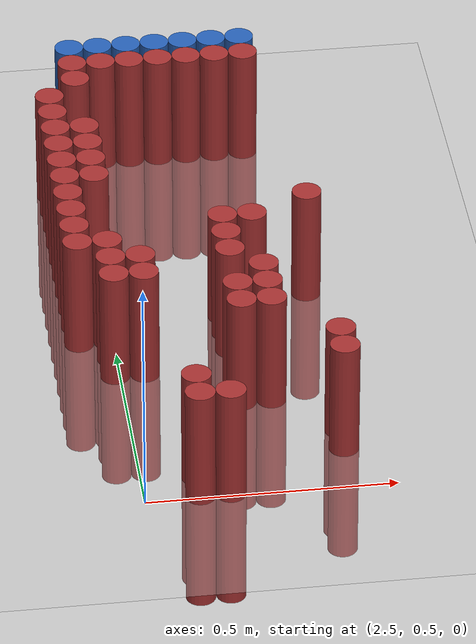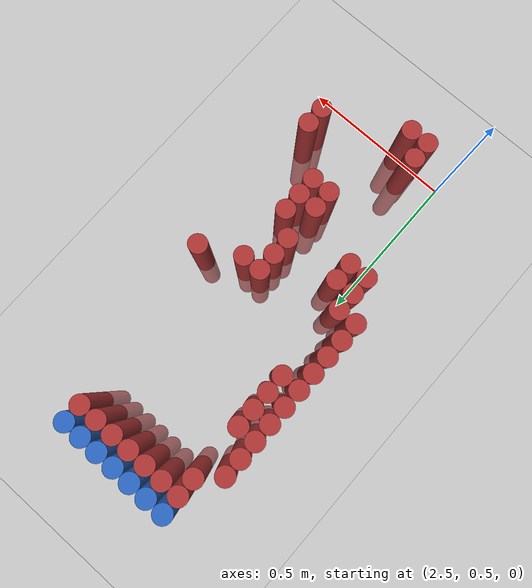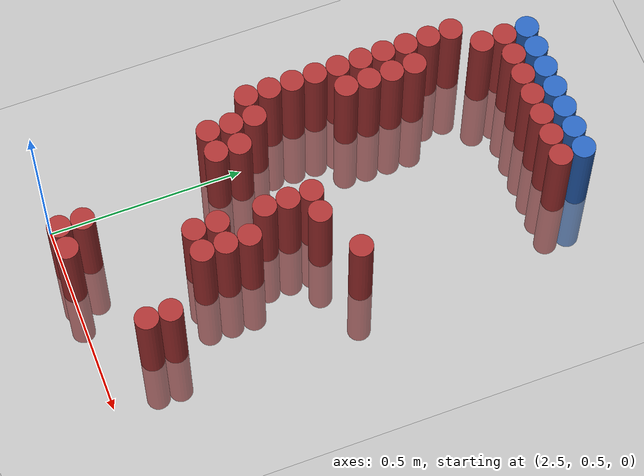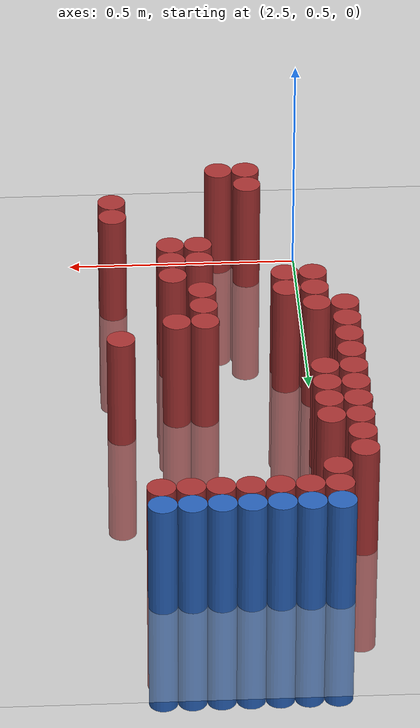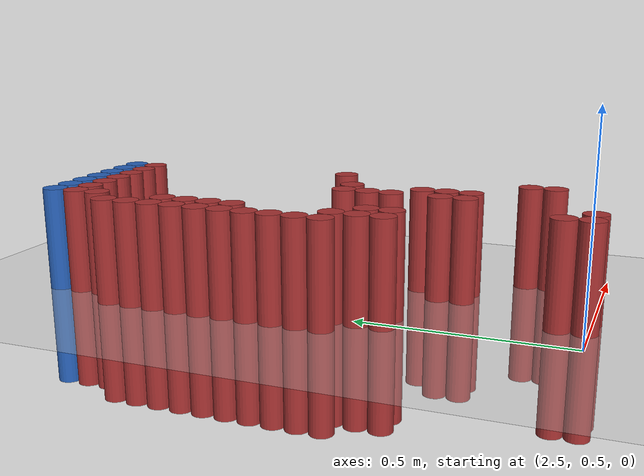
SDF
<sdf version="1.6">
 <world name="default">
  <model name="ground_plane">
   <static>1</static>
   <link name="link">
    <collision name="collision">
     <geometry><plane><normal>0 0 1</normal><size>100 100</size></plane></geometry>
     <surface><friction><ode><mu>100</mu><mu2>50</mu2></ode></friction></surface>
    </collision>
    <visual name="visual">
     <cast_shadows>0</cast_shadows>
     <geometry><plane><normal>0 0 1</normal><size>100 100</size></plane></geometry>
     <material>
      <script><uri>file://media/materials/scripts/gazebo.material</uri><name>Gazebo/Grey</name></script>
     </material>
    </visual>
   </link>
  </model>
  <model name="unit_cylinder_102">
   <static>1</static>
   <pose>2.490000 1.770000 0.000000 0.000000 0.000000 0.000000</pose>
   <link name="link">
    <inertial>
     <mass>1</mass>
     <inertia><ixx>0.145833</ixx><ixy>0</ixy><ixz>0</ixz><iyy>0.145833</iyy><iyz>0</iyz><izz>0.125</izz></inertia>
    </inertial>
    <collision name="collision">
     <geometry><cylinder><radius>0.030000</radius><length>0.5</length></cylinder></geometry>
    </collision>
    <visual name="visual">
     <geometry><cylinder><radius>0.030000</radius><length>0.5</length></cylinder></geometry>
     <material>
      <ambient>0.152000 0.379000 0.720000 1</ambient>
      <diffuse>0.152000 0.379000 0.720000 1</diffuse>
     </material>
     <material>
      <script><name>Gazebo/Grey</name><uri>file://media/materials/scripts/gazebo.material</uri></script>
     </material>
    </visual>
   </link>
  </model>
  <model name="unit_cylinder_103">
   <static>1</static>
   <pose>2.550000 1.770000 0.000000 0.000000 0.000000 0.000000</pose>
   <link name="link">
    <inertial>
     <mass>1</mass>
     <inertia><ixx>0.145833</ixx><ixy>0</ixy><ixz>0</ixz><iyy>0.145833</iyy><iyz>0</iyz><izz>0.125</izz></inertia>
    </inertial>
    <collision name="collision">
     <geometry><cylinder><radius>0.030000</radius><length>0.5</length></cylinder></geometry>
    </collision>
    <visual name="visual">
     <geometry><cylinder><radius>0.030000</radius><length>0.5</length></cylinder></geometry>
     <material>
      <ambient>0.152000 0.379000 0.720000 1</ambient>
      <diffuse>0.152000 0.379000 0.720000 1</diffuse>
     </material>
     <material>
      <script><name>Gazebo/Grey</name><uri>file://media/materials/scripts/gazebo.material</uri></script>
     </material>
    </visual>
   </link>
  </model>
  <model name="unit_cylinder_104">
   <static>1</static>
   <pose>2.610000 1.770000 0.000000 0.000000 0.000000 0.000000</pose>
   <link name="link">
    <inertial>
     <mass>1</mass>
     <inertia><ixx>0.145833</ixx><ixy>0</ixy><ixz>0</ixz><iyy>0.145833</iyy><iyz>0</iyz><izz>0.125</izz></inertia>
    </inertial>
    <collision name="collision">
     <geometry><cylinder><radius>0.030000</radius><length>0.5</length></cylinder></geometry>
    </collision>
    <visual name="visual">
     <geometry><cylinder><radius>0.030000</radius><length>0.5</length></cylinder></geometry>
     <material>
      <ambient>0.152000 0.379000 0.720000 1</ambient>
      <diffuse>0.152000 0.379000 0.720000 1</diffuse>
     </material>
     <material>
      <script><name>Gazebo/Grey</name><uri>file://media/materials/scripts/gazebo.material</uri></script>
     </material>
    </visual>
   </link>
  </model>
  <model name="unit_cylinder_105">
   <static>1</static>
   <pose>2.670000 1.770000 0.000000 0.000000 0.000000 0.000000</pose>
   <link name="link">
    <inertial>
     <mass>1</mass>
     <inertia><ixx>0.145833</ixx><ixy>0</ixy><ixz>0</ixz><iyy>0.145833</iyy><iyz>0</iyz><izz>0.125</izz></inertia>
    </inertial>
    <collision name="collision">
     <geometry><cylinder><radius>0.030000</radius><length>0.5</length></cylinder></geometry>
    </collision>
    <visual name="visual">
     <geometry><cylinder><radius>0.030000</radius><length>0.5</length></cylinder></geometry>
     <material>
      <ambient>0.152000 0.379000 0.720000 1</ambient>
      <diffuse>0.152000 0.379000 0.720000 1</diffuse>
     </material>
     <material>
      <script><name>Gazebo/Grey</name><uri>file://media/materials/scripts/gazebo.material</uri></script>
     </material>
    </visual>
   </link>
  </model>
  <model name="unit_cylinder_106">
   <static>1</static>
   <pose>2.730000 1.770000 0.000000 0.000000 0.000000 0.000000</pose>
   <link name="link">
    <inertial>
     <mass>1</mass>
     <inertia><ixx>0.145833</ixx><ixy>0</ixy><ixz>0</ixz><iyy>0.145833</iyy><iyz>0</iyz><izz>0.125</izz></inertia>
    </inertial>
    <collision name="collision">
     <geometry><cylinder><radius>0.030000</radius><length>0.5</length></cylinder></geometry>
    </collision>
    <visual name="visual">
     <geometry><cylinder><radius>0.030000</radius><length>0.5</length></cylinder></geometry>
     <material>
      <ambient>0.152000 0.379000 0.720000 1</ambient>
      <diffuse>0.152000 0.379000 0.720000 1</diffuse>
     </material>
     <material>
      <script><name>Gazebo/Grey</name><uri>file://media/materials/scripts/gazebo.material</uri></script>
     </material>
    </visual>
   </link>
  </model>
  <model name="unit_cylinder_107">
   <static>1</static>
   <pose>2.790000 1.770000 0.000000 0.000000 0.000000 0.000000</pose>
   <link name="link">
    <inertial>
     <mass>1</mass>
     <inertia><ixx>0.145833</ixx><ixy>0</ixy><ixz>0</ixz><iyy>0.145833</iyy><iyz>0</iyz><izz>0.125</izz></inertia>
    </inertial>
    <collision name="collision">
     <geometry><cylinder><radius>0.030000</radius><length>0.5</length></cylinder></geometry>
    </collision>
    <visual name="visual">
     <geometry><cylinder><radius>0.030000</radius><length>0.5</length></cylinder></geometry>
     <material>
      <ambient>0.152000 0.379000 0.720000 1</ambient>
      <diffuse>0.152000 0.379000 0.720000 1</diffuse>
     </material>
     <material>
      <script><name>Gazebo/Grey</name><uri>file://media/materials/scripts/gazebo.material</uri></script>
     </material>
    </visual>
   </link>
  </model>
  <model name="unit_cylinder_108">
   <static>1</static>
   <pose>2.850000 1.770000 0.000000 0.000000 0.000000 0.000000</pose>
   <link name="link">
    <inertial>
     <mass>1</mass>
     <inertia><ixx>0.145833</ixx><ixy>0</ixy><ixz>0</ixz><iyy>0.145833</iyy><iyz>0</iyz><izz>0.125</izz></inertia>
    </inertial>
    <collision name="collision">
     <geometry><cylinder><radius>0.030000</radius><length>0.5</length></cylinder></geometry>
    </collision>
    <visual name="visual">
     <geometry><cylinder><radius>0.030000</radius><length>0.5</length></cylinder></geometry>
     <material>
      <ambient>0.152000 0.379000 0.720000 1</ambient>
      <diffuse>0.152000 0.379000 0.720000 1</diffuse>
     </material>
     <material>
      <script><name>Gazebo/Grey</name><uri>file://media/materials/scripts/gazebo.material</uri></script>
     </material>
    </visual>
   </link>
  </model>
  <model name="unit_cylinder_126">
   <static>1</static>
   <pose>2.490000 1.710000 0.000000 0.000000 0.000000 0.000000</pose>
   <link name="link">
    <inertial>
     <mass>1</mass>
     <inertia><ixx>0.145833</ixx><ixy>0</ixy><ixz>0</ixz><iyy>0.145833</iyy><iyz>0</iyz><izz>0.125</izz></inertia>
    </inertial>
    <collision name="collision">
     <geometry><cylinder><radius>0.030000</radius><length>0.5</length></cylinder></geometry>
    </collision>
    <visual name="visual">
     <geometry><cylinder><radius>0.030000</radius><length>0.5</length></cylinder></geometry>
     <material>
      <ambient>0.648000 0.192000 0.192000 1</ambient>
      <diffuse>0.648000 0.192000 0.192000 1</diffuse>
     </material>
     <material>
      <script><name>Gazebo/Grey</name><uri>file://media/materials/scripts/gazebo.material</uri></script>
     </material>
    </visual>
   </link>
  </model>
  <model name="unit_cylinder_127">
   <static>1</static>
   <pose>2.550000 1.710000 0.000000 0.000000 0.000000 0.000000</pose>
   <link name="link">
    <inertial>
     <mass>1</mass>
     <inertia><ixx>0.145833</ixx><ixy>0</ixy><ixz>0</ixz><iyy>0.145833</iyy><iyz>0</iyz><izz>0.125</izz></inertia>
    </inertial>
    <collision name="collision">
     <geometry><cylinder><radius>0.030000</radius><length>0.5</length></cylinder></geometry>
    </collision>
    <visual name="visual">
     <geometry><cylinder><radius>0.030000</radius><length>0.5</length></cylinder></geometry>
     <material>
      <ambient>0.648000 0.192000 0.192000 1</ambient>
      <diffuse>0.648000 0.192000 0.192000 1</diffuse>
     </material>
     <material>
      <script><name>Gazebo/Grey</name><uri>file://media/materials/scripts/gazebo.material</uri></script>
     </material>
    </visual>
   </link>
  </model>
  <model name="unit_cylinder_128">
   <static>1</static>
   <pose>2.610000 1.710000 0.000000 0.000000 0.000000 0.000000</pose>
   <link name="link">
    <inertial>
     <mass>1</mass>
     <inertia><ixx>0.145833</ixx><ixy>0</ixy><ixz>0</ixz><iyy>0.145833</iyy><iyz>0</iyz><izz>0.125</izz></inertia>
    </inertial>
    <collision name="collision">
     <geometry><cylinder><radius>0.030000</radius><length>0.5</length></cylinder></geometry>
    </collision>
    <visual name="visual">
     <geometry><cylinder><radius>0.030000</radius><length>0.5</length></cylinder></geometry>
     <material>
      <ambient>0.648000 0.192000 0.192000 1</ambient>
      <diffuse>0.648000 0.192000 0.192000 1</diffuse>
     </material>
     <material>
      <script><name>Gazebo/Grey</name><uri>file://media/materials/scripts/gazebo.material</uri></script>
     </material>
    </visual>
   </link>
  </model>
  <model name="unit_cylinder_129">
   <static>1</static>
   <pose>2.670000 1.710000 0.000000 0.000000 0.000000 0.000000</pose>
   <link name="link">
    <inertial>
     <mass>1</mass>
     <inertia><ixx>0.145833</ixx><ixy>0</ixy><ixz>0</ixz><iyy>0.145833</iyy><iyz>0</iyz><izz>0.125</izz></inertia>
    </inertial>
    <collision name="collision">
     <geometry><cylinder><radius>0.030000</radius><length>0.5</length></cylinder></geometry>
    </collision>
    <visual name="visual">
     <geometry><cylinder><radius>0.030000</radius><length>0.5</length></cylinder></geometry>
     <material>
      <ambient>0.648000 0.192000 0.192000 1</ambient>
      <diffuse>0.648000 0.192000 0.192000 1</diffuse>
     </material>
     <material>
      <script><name>Gazebo/Grey</name><uri>file://media/materials/scripts/gazebo.material</uri></script>
     </material>
    </visual>
   </link>
  </model>
  <model name="unit_cylinder_130">
   <static>1</static>
   <pose>2.730000 1.710000 0.000000 0.000000 0.000000 0.000000</pose>
   <link name="link">
    <inertial>
     <mass>1</mass>
     <inertia><ixx>0.145833</ixx><ixy>0</ixy><ixz>0</ixz><iyy>0.145833</iyy><iyz>0</iyz><izz>0.125</izz></inertia>
    </inertial>
    <collision name="collision">
     <geometry><cylinder><radius>0.030000</radius><length>0.5</length></cylinder></geometry>
    </collision>
    <visual name="visual">
     <geometry><cylinder><radius>0.030000</radius><length>0.5</length></cylinder></geometry>
     <material>
      <ambient>0.648000 0.192000 0.192000 1</ambient>
      <diffuse>0.648000 0.192000 0.192000 1</diffuse>
     </material>
     <material>
      <script><name>Gazebo/Grey</name><uri>file://media/materials/scripts/gazebo.material</uri></script>
     </material>
    </visual>
   </link>
  </model>
  <model name="unit_cylinder_131">
   <static>1</static>
   <pose>2.790000 1.710000 0.000000 0.000000 0.000000 0.000000</pose>
   <link name="link">
    <inertial>
     <mass>1</mass>
     <inertia><ixx>0.145833</ixx><ixy>0</ixy><ixz>0</ixz><iyy>0.145833</iyy><iyz>0</iyz><izz>0.125</izz></inertia>
    </inertial>
    <collision name="collision">
     <geometry><cylinder><radius>0.030000</radius><length>0.5</length></cylinder></geometry>
    </collision>
    <visual name="visual">
     <geometry><cylinder><radius>0.030000</radius><length>0.5</length></cylinder></geometry>
     <material>
      <ambient>0.648000 0.192000 0.192000 1</ambient>
      <diffuse>0.648000 0.192000 0.192000 1</diffuse>
     </material>
     <material>
      <script><name>Gazebo/Grey</name><uri>file://media/materials/scripts/gazebo.material</uri></script>
     </material>
    </visual>
   </link>
  </model>
  <model name="unit_cylinder_132">
   <static>1</static>
   <pose>2.850000 1.710000 0.000000 0.000000 0.000000 0.000000</pose>
   <link name="link">
    <inertial>
     <mass>1</mass>
     <inertia><ixx>0.145833</ixx><ixy>0</ixy><ixz>0</ixz><iyy>0.145833</iyy><iyz>0</iyz><izz>0.125</izz></inertia>
    </inertial>
    <collision name="collision">
     <geometry><cylinder><radius>0.030000</radius><length>0.5</length></cylinder></geometry>
    </collision>
    <visual name="visual">
     <geometry><cylinder><radius>0.030000</radius><length>0.5</length></cylinder></geometry>
     <material>
      <ambient>0.648000 0.192000 0.192000 1</ambient>
      <diffuse>0.648000 0.192000 0.192000 1</diffuse>
     </material>
     <material>
      <script><name>Gazebo/Grey</name><uri>file://media/materials/scripts/gazebo.material</uri></script>
     </material>
    </visual>
   </link>
  </model>
  <model name="unit_cylinder_142">
   <static>1</static>
   <pose>2.490000 1.650000 0.000000 0.000000 0.000000 0.000000</pose>
   <link name="link">
    <inertial>
     <mass>1</mass>
     <inertia><ixx>0.145833</ixx><ixy>0</ixy><ixz>0</ixz><iyy>0.145833</iyy><iyz>0</iyz><izz>0.125</izz></inertia>
    </inertial>
    <collision name="collision">
     <geometry><cylinder><radius>0.030000</radius><length>0.5</length></cylinder></geometry>
    </collision>
    <visual name="visual">
     <geometry><cylinder><radius>0.030000</radius><length>0.5</length></cylinder></geometry>
     <material>
      <ambient>0.648000 0.192000 0.192000 1</ambient>
      <diffuse>0.648000 0.192000 0.192000 1</diffuse>
     </material>
     <material>
      <script><name>Gazebo/Grey</name><uri>file://media/materials/scripts/gazebo.material</uri></script>
     </material>
    </visual>
   </link>
  </model>
  <model name="unit_cylinder_150">
   <static>1</static>
   <pose>2.430000 1.590000 0.000000 0.000000 0.000000 0.000000</pose>
   <link name="link">
    <inertial>
     <mass>1</mass>
     <inertia><ixx>0.145833</ixx><ixy>0</ixy><ixz>0</ixz><iyy>0.145833</iyy><iyz>0</iyz><izz>0.125</izz></inertia>
    </inertial>
    <collision name="collision">
     <geometry><cylinder><radius>0.030000</radius><length>0.5</length></cylinder></geometry>
    </collision>
    <visual name="visual">
     <geometry><cylinder><radius>0.030000</radius><length>0.5</length></cylinder></geometry>
     <material>
      <ambient>0.648000 0.192000 0.192000 1</ambient>
      <diffuse>0.648000 0.192000 0.192000 1</diffuse>
     </material>
     <material>
      <script><name>Gazebo/Grey</name><uri>file://media/materials/scripts/gazebo.material</uri></script>
     </material>
    </visual>
   </link>
  </model>
  <model name="unit_cylinder_153">
   <static>1</static>
   <pose>2.430000 1.530000 0.000000 0.000000 0.000000 0.000000</pose>
   <link name="link">
    <inertial>
     <mass>1</mass>
     <inertia><ixx>0.145833</ixx><ixy>0</ixy><ixz>0</ixz><iyy>0.145833</iyy><iyz>0</iyz><izz>0.125</izz></inertia>
    </inertial>
    <collision name="collision">
     <geometry><cylinder><radius>0.030000</radius><length>0.5</length></cylinder></geometry>
    </collision>
    <visual name="visual">
     <geometry><cylinder><radius>0.030000</radius><length>0.5</length></cylinder></geometry>
     <material>
      <ambient>0.648000 0.192000 0.192000 1</ambient>
      <diffuse>0.648000 0.192000 0.192000 1</diffuse>
     </material>
     <material>
      <script><name>Gazebo/Grey</name><uri>file://media/materials/scripts/gazebo.material</uri></script>
     </material>
    </visual>
   </link>
  </model>
  <model name="unit_cylinder_154">
   <static>1</static>
   <pose>2.430000 1.470000 0.000000 0.000000 0.000000 0.000000</pose>
   <link name="link">
    <inertial>
     <mass>1</mass>
     <inertia><ixx>0.145833</ixx><ixy>0</ixy><ixz>0</ixz><iyy>0.145833</iyy><iyz>0</iyz><izz>0.125</izz></inertia>
    </inertial>
    <collision name="collision">
     <geometry><cylinder><radius>0.030000</radius><length>0.5</length></cylinder></geometry>
    </collision>
    <visual name="visual">
     <geometry><cylinder><radius>0.030000</radius><length>0.5</length></cylinder></geometry>
     <material>
      <ambient>0.648000 0.192000 0.192000 1</ambient>
      <diffuse>0.648000 0.192000 0.192000 1</diffuse>
     </material>
     <material>
      <script><name>Gazebo/Grey</name><uri>file://media/materials/scripts/gazebo.material</uri></script>
     </material>
    </visual>
   </link>
  </model>
  <model name="unit_cylinder_155">
   <static>1</static>
   <pose>2.490000 1.470000 0.000000 0.000000 0.000000 0.000000</pose>
   <link name="link">
    <inertial>
     <mass>1</mass>
     <inertia><ixx>0.145833</ixx><ixy>0</ixy><ixz>0</ixz><iyy>0.145833</iyy><iyz>0</iyz><izz>0.125</izz></inertia>
    </inertial>
    <collision name="collision">
     <geometry><cylinder><radius>0.030000</radius><length>0.5</length></cylinder></geometry>
    </collision>
    <visual name="visual">
     <geometry><cylinder><radius>0.030000</radius><length>0.5</length></cylinder></geometry>
     <material>
      <ambient>0.648000 0.192000 0.192000 1</ambient>
      <diffuse>0.648000 0.192000 0.192000 1</diffuse>
     </material>
     <material>
      <script><name>Gazebo/Grey</name><uri>file://media/materials/scripts/gazebo.material</uri></script>
     </material>
    </visual>
   </link>
  </model>
  <model name="unit_cylinder_157">
   <static>1</static>
   <pose>2.430000 1.410000 0.000000 0.000000 0.000000 0.000000</pose>
   <link name="link">
    <inertial>
     <mass>1</mass>
     <inertia><ixx>0.145833</ixx><ixy>0</ixy><ixz>0</ixz><iyy>0.145833</iyy><iyz>0</iyz><izz>0.125</izz></inertia>
    </inertial>
    <collision name="collision">
     <geometry><cylinder><radius>0.030000</radius><length>0.5</length></cylinder></geometry>
    </collision>
    <visual name="visual">
     <geometry><cylinder><radius>0.030000</radius><length>0.5</length></cylinder></geometry>
     <material>
      <ambient>0.648000 0.192000 0.192000 1</ambient>
      <diffuse>0.648000 0.192000 0.192000 1</diffuse>
     </material>
     <material>
      <script><name>Gazebo/Grey</name><uri>file://media/materials/scripts/gazebo.material</uri></script>
     </material>
    </visual>
   </link>
  </model>
  <model name="unit_cylinder_158">
   <static>1</static>
   <pose>2.490000 1.410000 0.000000 0.000000 0.000000 0.000000</pose>
   <link name="link">
    <inertial>
     <mass>1</mass>
     <inertia><ixx>0.145833</ixx><ixy>0</ixy><ixz>0</ixz><iyy>0.145833</iyy><iyz>0</iyz><izz>0.125</izz></inertia>
    </inertial>
    <collision name="collision">
     <geometry><cylinder><radius>0.030000</radius><length>0.5</length></cylinder></geometry>
    </collision>
    <visual name="visual">
     <geometry><cylinder><radius>0.030000</radius><length>0.5</length></cylinder></geometry>
     <material>
      <ambient>0.648000 0.192000 0.192000 1</ambient>
      <diffuse>0.648000 0.192000 0.192000 1</diffuse>
     </material>
     <material>
      <script><name>Gazebo/Grey</name><uri>file://media/materials/scripts/gazebo.material</uri></script>
     </material>
    </visual>
   </link>
  </model>
  <model name="unit_cylinder_162">
   <static>1</static>
   <pose>2.430000 1.350000 0.000000 0.000000 0.000000 0.000000</pose>
   <link name="link">
    <inertial>
     <mass>1</mass>
     <inertia><ixx>0.145833</ixx><ixy>0</ixy><ixz>0</ixz><iyy>0.145833</iyy><iyz>0</iyz><izz>0.125</izz></inertia>
    </inertial>
    <collision name="collision">
     <geometry><cylinder><radius>0.030000</radius><length>0.5</length></cylinder></geometry>
    </collision>
    <visual name="visual">
     <geometry><cylinder><radius>0.030000</radius><length>0.5</length></cylinder></geometry>
     <material>
      <ambient>0.648000 0.192000 0.192000 1</ambient>
      <diffuse>0.648000 0.192000 0.192000 1</diffuse>
     </material>
     <material>
      <script><name>Gazebo/Grey</name><uri>file://media/materials/scripts/gazebo.material</uri></script>
     </material>
    </visual>
   </link>
  </model>
  <model name="unit_cylinder_163">
   <static>1</static>
   <pose>2.490000 1.350000 0.000000 0.000000 0.000000 0.000000</pose>
   <link name="link">
    <inertial>
     <mass>1</mass>
     <inertia><ixx>0.145833</ixx><ixy>0</ixy><ixz>0</ixz><iyy>0.145833</iyy><iyz>0</iyz><izz>0.125</izz></inertia>
    </inertial>
    <collision name="collision">
     <geometry><cylinder><radius>0.030000</radius><length>0.5</length></cylinder></geometry>
    </collision>
    <visual name="visual">
     <geometry><cylinder><radius>0.030000</radius><length>0.5</length></cylinder></geometry>
     <material>
      <ambient>0.648000 0.192000 0.192000 1</ambient>
      <diffuse>0.648000 0.192000 0.192000 1</diffuse>
     </material>
     <material>
      <script><name>Gazebo/Grey</name><uri>file://media/materials/scripts/gazebo.material</uri></script>
     </material>
    </visual>
   </link>
  </model>
  <model name="unit_cylinder_169">
   <static>1</static>
   <pose>2.430000 1.290000 0.000000 0.000000 0.000000 0.000000</pose>
   <link name="link">
    <inertial>
     <mass>1</mass>
     <inertia><ixx>0.145833</ixx><ixy>0</ixy><ixz>0</ixz><iyy>0.145833</iyy><iyz>0</iyz><izz>0.125</izz></inertia>
    </inertial>
    <collision name="collision">
     <geometry><cylinder><radius>0.030000</radius><length>0.5</length></cylinder></geometry>
    </collision>
    <visual name="visual">
     <geometry><cylinder><radius>0.030000</radius><length>0.5</length></cylinder></geometry>
     <material>
      <ambient>0.648000 0.192000 0.192000 1</ambient>
      <diffuse>0.648000 0.192000 0.192000 1</diffuse>
     </material>
     <material>
      <script><name>Gazebo/Grey</name><uri>file://media/materials/scripts/gazebo.material</uri></script>
     </material>
    </visual>
   </link>
  </model>
  <model name="unit_cylinder_170">
   <static>1</static>
   <pose>2.490000 1.290000 0.000000 0.000000 0.000000 0.000000</pose>
   <link name="link">
    <inertial>
     <mass>1</mass>
     <inertia><ixx>0.145833</ixx><ixy>0</ixy><ixz>0</ixz><iyy>0.145833</iyy><iyz>0</iyz><izz>0.125</izz></inertia>
    </inertial>
    <collision name="collision">
     <geometry><cylinder><radius>0.030000</radius><length>0.5</length></cylinder></geometry>
    </collision>
    <visual name="visual">
     <geometry><cylinder><radius>0.030000</radius><length>0.5</length></cylinder></geometry>
     <material>
      <ambient>0.648000 0.192000 0.192000 1</ambient>
      <diffuse>0.648000 0.192000 0.192000 1</diffuse>
     </material>
     <material>
      <script><name>Gazebo/Grey</name><uri>file://media/materials/scripts/gazebo.material</uri></script>
     </material>
    </visual>
   </link>
  </model>
  <model name="unit_cylinder_176">
   <static>1</static>
   <pose>2.430000 1.230000 0.000000 0.000000 0.000000 0.000000</pose>
   <link name="link">
    <inertial>
     <mass>1</mass>
     <inertia><ixx>0.145833</ixx><ixy>0</ixy><ixz>0</ixz><iyy>0.145833</iyy><iyz>0</iyz><izz>0.125</izz></inertia>
    </inertial>
    <collision name="collision">
     <geometry><cylinder><radius>0.030000</radius><length>0.5</length></cylinder></geometry>
    </collision>
    <visual name="visual">
     <geometry><cylinder><radius>0.030000</radius><length>0.5</length></cylinder></geometry>
     <material>
      <ambient>0.648000 0.192000 0.192000 1</ambient>
      <diffuse>0.648000 0.192000 0.192000 1</diffuse>
     </material>
     <material>
      <script><name>Gazebo/Grey</name><uri>file://media/materials/scripts/gazebo.material</uri></script>
     </material>
    </visual>
   </link>
  </model>
  <model name="unit_cylinder_179">
   <static>1</static>
   <pose>2.430000 1.170000 0.000000 0.000000 0.000000 0.000000</pose>
   <link name="link">
    <inertial>
     <mass>1</mass>
     <inertia><ixx>0.145833</ixx><ixy>0</ixy><ixz>0</ixz><iyy>0.145833</iyy><iyz>0</iyz><izz>0.125</izz></inertia>
    </inertial>
    <collision name="collision">
     <geometry><cylinder><radius>0.030000</radius><length>0.5</length></cylinder></geometry>
    </collision>
    <visual name="visual">
     <geometry><cylinder><radius>0.030000</radius><length>0.5</length></cylinder></geometry>
     <material>
      <ambient>0.648000 0.192000 0.192000 1</ambient>
      <diffuse>0.648000 0.192000 0.192000 1</diffuse>
     </material>
     <material>
      <script><name>Gazebo/Grey</name><uri>file://media/materials/scripts/gazebo.material</uri></script>
     </material>
    </visual>
   </link>
  </model>
  <model name="unit_cylinder_180">
   <static>1</static>
   <pose>2.910000 1.170000 0.000000 0.000000 0.000000 0.000000</pose>
   <link name="link">
    <inertial>
     <mass>1</mass>
     <inertia><ixx>0.145833</ixx><ixy>0</ixy><ixz>0</ixz><iyy>0.145833</iyy><iyz>0</iyz><izz>0.125</izz></inertia>
    </inertial>
    <collision name="collision">
     <geometry><cylinder><radius>0.030000</radius><length>0.5</length></cylinder></geometry>
    </collision>
    <visual name="visual">
     <geometry><cylinder><radius>0.030000</radius><length>0.5</length></cylinder></geometry>
     <material>
      <ambient>0.648000 0.192000 0.192000 1</ambient>
      <diffuse>0.648000 0.192000 0.192000 1</diffuse>
     </material>
     <material>
      <script><name>Gazebo/Grey</name><uri>file://media/materials/scripts/gazebo.material</uri></script>
     </material>
    </visual>
   </link>
  </model>
  <model name="unit_cylinder_188">
   <static>1</static>
   <pose>2.430000 1.110000 0.000000 0.000000 0.000000 0.000000</pose>
   <link name="link">
    <inertial>
     <mass>1</mass>
     <inertia><ixx>0.145833</ixx><ixy>0</ixy><ixz>0</ixz><iyy>0.145833</iyy><iyz>0</iyz><izz>0.125</izz></inertia>
    </inertial>
    <collision name="collision">
     <geometry><cylinder><radius>0.030000</radius><length>0.5</length></cylinder></geometry>
    </collision>
    <visual name="visual">
     <geometry><cylinder><radius>0.030000</radius><length>0.5</length></cylinder></geometry>
     <material>
      <ambient>0.648000 0.192000 0.192000 1</ambient>
      <diffuse>0.648000 0.192000 0.192000 1</diffuse>
     </material>
     <material>
      <script><name>Gazebo/Grey</name><uri>file://media/materials/scripts/gazebo.material</uri></script>
     </material>
    </visual>
   </link>
  </model>
  <model name="unit_cylinder_189">
   <static>1</static>
   <pose>2.730000 1.110000 0.000000 0.000000 0.000000 0.000000</pose>
   <link name="link">
    <inertial>
     <mass>1</mass>
     <inertia><ixx>0.145833</ixx><ixy>0</ixy><ixz>0</ixz><iyy>0.145833</iyy><iyz>0</iyz><izz>0.125</izz></inertia>
    </inertial>
    <collision name="collision">
     <geometry><cylinder><radius>0.030000</radius><length>0.5</length></cylinder></geometry>
    </collision>
    <visual name="visual">
     <geometry><cylinder><radius>0.030000</radius><length>0.5</length></cylinder></geometry>
     <material>
      <ambient>0.648000 0.192000 0.192000 1</ambient>
      <diffuse>0.648000 0.192000 0.192000 1</diffuse>
     </material>
     <material>
      <script><name>Gazebo/Grey</name><uri>file://media/materials/scripts/gazebo.material</uri></script>
     </material>
    </visual>
   </link>
  </model>
  <model name="unit_cylinder_190">
   <static>1</static>
   <pose>2.790000 1.110000 0.000000 0.000000 0.000000 0.000000</pose>
   <link name="link">
    <inertial>
     <mass>1</mass>
     <inertia><ixx>0.145833</ixx><ixy>0</ixy><ixz>0</ixz><iyy>0.145833</iyy><iyz>0</iyz><izz>0.125</izz></inertia>
    </inertial>
    <collision name="collision">
     <geometry><cylinder><radius>0.030000</radius><length>0.5</length></cylinder></geometry>
    </collision>
    <visual name="visual">
     <geometry><cylinder><radius>0.030000</radius><length>0.5</length></cylinder></geometry>
     <material>
      <ambient>0.648000 0.192000 0.192000 1</ambient>
      <diffuse>0.648000 0.192000 0.192000 1</diffuse>
     </material>
     <material>
      <script><name>Gazebo/Grey</name><uri>file://media/materials/scripts/gazebo.material</uri></script>
     </material>
    </visual>
   </link>
  </model>
  <model name="unit_cylinder_199">
   <static>1</static>
   <pose>2.430000 1.050000 0.000000 0.000000 0.000000 0.000000</pose>
   <link name="link">
    <inertial>
     <mass>1</mass>
     <inertia><ixx>0.145833</ixx><ixy>0</ixy><ixz>0</ixz><iyy>0.145833</iyy><iyz>0</iyz><izz>0.125</izz></inertia>
    </inertial>
    <collision name="collision">
     <geometry><cylinder><radius>0.030000</radius><length>0.5</length></cylinder></geometry>
    </collision>
    <visual name="visual">
     <geometry><cylinder><radius>0.030000</radius><length>0.5</length></cylinder></geometry>
     <material>
      <ambient>0.648000 0.192000 0.192000 1</ambient>
      <diffuse>0.648000 0.192000 0.192000 1</diffuse>
     </material>
     <material>
      <script><name>Gazebo/Grey</name><uri>file://media/materials/scripts/gazebo.material</uri></script>
     </material>
    </visual>
   </link>
  </model>
  <model name="unit_cylinder_200">
   <static>1</static>
   <pose>2.490000 1.050000 0.000000 0.000000 0.000000 0.000000</pose>
   <link name="link">
    <inertial>
     <mass>1</mass>
     <inertia><ixx>0.145833</ixx><ixy>0</ixy><ixz>0</ixz><iyy>0.145833</iyy><iyz>0</iyz><izz>0.125</izz></inertia>
    </inertial>
    <collision name="collision">
     <geometry><cylinder><radius>0.030000</radius><length>0.5</length></cylinder></geometry>
    </collision>
    <visual name="visual">
     <geometry><cylinder><radius>0.030000</radius><length>0.5</length></cylinder></geometry>
     <material>
      <ambient>0.648000 0.192000 0.192000 1</ambient>
      <diffuse>0.648000 0.192000 0.192000 1</diffuse>
     </material>
     <material>
      <script><name>Gazebo/Grey</name><uri>file://media/materials/scripts/gazebo.material</uri></script>
     </material>
    </visual>
   </link>
  </model>
  <model name="unit_cylinder_201">
   <static>1</static>
   <pose>2.730000 1.050000 0.000000 0.000000 0.000000 0.000000</pose>
   <link name="link">
    <inertial>
     <mass>1</mass>
     <inertia><ixx>0.145833</ixx><ixy>0</ixy><ixz>0</ixz><iyy>0.145833</iyy><iyz>0</iyz><izz>0.125</izz></inertia>
    </inertial>
    <collision name="collision">
     <geometry><cylinder><radius>0.030000</radius><length>0.5</length></cylinder></geometry>
    </collision>
    <visual name="visual">
     <geometry><cylinder><radius>0.030000</radius><length>0.5</length></cylinder></geometry>
     <material>
      <ambient>0.648000 0.192000 0.192000 1</ambient>
      <diffuse>0.648000 0.192000 0.192000 1</diffuse>
     </material>
     <material>
      <script><name>Gazebo/Grey</name><uri>file://media/materials/scripts/gazebo.material</uri></script>
     </material>
    </visual>
   </link>
  </model>
  <model name="unit_cylinder_207">
   <static>1</static>
   <pose>2.490000 0.990000 0.000000 0.000000 0.000000 0.000000</pose>
   <link name="link">
    <inertial>
     <mass>1</mass>
     <inertia><ixx>0.145833</ixx><ixy>0</ixy><ixz>0</ixz><iyy>0.145833</iyy><iyz>0</iyz><izz>0.125</izz></inertia>
    </inertial>
    <collision name="collision">
     <geometry><cylinder><radius>0.030000</radius><length>0.5</length></cylinder></geometry>
    </collision>
    <visual name="visual">
     <geometry><cylinder><radius>0.030000</radius><length>0.5</length></cylinder></geometry>
     <material>
      <ambient>0.648000 0.192000 0.192000 1</ambient>
      <diffuse>0.648000 0.192000 0.192000 1</diffuse>
     </material>
     <material>
      <script><name>Gazebo/Grey</name><uri>file://media/materials/scripts/gazebo.material</uri></script>
     </material>
    </visual>
   </link>
  </model>
  <model name="unit_cylinder_208">
   <static>1</static>
   <pose>2.550000 0.990000 0.000000 0.000000 0.000000 0.000000</pose>
   <link name="link">
    <inertial>
     <mass>1</mass>
     <inertia><ixx>0.145833</ixx><ixy>0</ixy><ixz>0</ixz><iyy>0.145833</iyy><iyz>0</iyz><izz>0.125</izz></inertia>
    </inertial>
    <collision name="collision">
     <geometry><cylinder><radius>0.030000</radius><length>0.5</length></cylinder></geometry>
    </collision>
    <visual name="visual">
     <geometry><cylinder><radius>0.030000</radius><length>0.5</length></cylinder></geometry>
     <material>
      <ambient>0.648000 0.192000 0.192000 1</ambient>
      <diffuse>0.648000 0.192000 0.192000 1</diffuse>
     </material>
     <material>
      <script><name>Gazebo/Grey</name><uri>file://media/materials/scripts/gazebo.material</uri></script>
     </material>
    </visual>
   </link>
  </model>
  <model name="unit_cylinder_209">
   <static>1</static>
   <pose>2.730000 0.990000 0.000000 0.000000 0.000000 0.000000</pose>
   <link name="link">
    <inertial>
     <mass>1</mass>
     <inertia><ixx>0.145833</ixx><ixy>0</ixy><ixz>0</ixz><iyy>0.145833</iyy><iyz>0</iyz><izz>0.125</izz></inertia>
    </inertial>
    <collision name="collision">
     <geometry><cylinder><radius>0.030000</radius><length>0.5</length></cylinder></geometry>
    </collision>
    <visual name="visual">
     <geometry><cylinder><radius>0.030000</radius><length>0.5</length></cylinder></geometry>
     <material>
      <ambient>0.648000 0.192000 0.192000 1</ambient>
      <diffuse>0.648000 0.192000 0.192000 1</diffuse>
     </material>
     <material>
      <script><name>Gazebo/Grey</name><uri>file://media/materials/scripts/gazebo.material</uri></script>
     </material>
    </visual>
   </link>
  </model>
  <model name="unit_cylinder_210">
   <static>1</static>
   <pose>2.490000 0.930000 0.000000 0.000000 0.000000 0.000000</pose>
   <link name="link">
    <inertial>
     <mass>1</mass>
     <inertia><ixx>0.145833</ixx><ixy>0</ixy><ixz>0</ixz><iyy>0.145833</iyy><iyz>0</iyz><izz>0.125</izz></inertia>
    </inertial>
    <collision name="collision">
     <geometry><cylinder><radius>0.030000</radius><length>0.5</length></cylinder></geometry>
    </collision>
    <visual name="visual">
     <geometry><cylinder><radius>0.030000</radius><length>0.5</length></cylinder></geometry>
     <material>
      <ambient>0.648000 0.192000 0.192000 1</ambient>
      <diffuse>0.648000 0.192000 0.192000 1</diffuse>
     </material>
     <material>
      <script><name>Gazebo/Grey</name><uri>file://media/materials/scripts/gazebo.material</uri></script>
     </material>
    </visual>
   </link>
  </model>
  <model name="unit_cylinder_211">
   <static>1</static>
   <pose>2.550000 0.930000 0.000000 0.000000 0.000000 0.000000</pose>
   <link name="link">
    <inertial>
     <mass>1</mass>
     <inertia><ixx>0.145833</ixx><ixy>0</ixy><ixz>0</ixz><iyy>0.145833</iyy><iyz>0</iyz><izz>0.125</izz></inertia>
    </inertial>
    <collision name="collision">
     <geometry><cylinder><radius>0.030000</radius><length>0.5</length></cylinder></geometry>
    </collision>
    <visual name="visual">
     <geometry><cylinder><radius>0.030000</radius><length>0.5</length></cylinder></geometry>
     <material>
      <ambient>0.648000 0.192000 0.192000 1</ambient>
      <diffuse>0.648000 0.192000 0.192000 1</diffuse>
     </material>
     <material>
      <script><name>Gazebo/Grey</name><uri>file://media/materials/scripts/gazebo.material</uri></script>
     </material>
    </visual>
   </link>
  </model>
  <model name="unit_cylinder_212">
   <static>1</static>
   <pose>2.790000 0.930000 0.000000 0.000000 0.000000 0.000000</pose>
   <link name="link">
    <inertial>
     <mass>1</mass>
     <inertia><ixx>0.145833</ixx><ixy>0</ixy><ixz>0</ixz><iyy>0.145833</iyy><iyz>0</iyz><izz>0.125</izz></inertia>
    </inertial>
    <collision name="collision">
     <geometry><cylinder><radius>0.030000</radius><length>0.5</length></cylinder></geometry>
    </collision>
    <visual name="visual">
     <geometry><cylinder><radius>0.030000</radius><length>0.5</length></cylinder></geometry>
     <material>
      <ambient>0.648000 0.192000 0.192000 1</ambient>
      <diffuse>0.648000 0.192000 0.192000 1</diffuse>
     </material>
     <material>
      <script><name>Gazebo/Grey</name><uri>file://media/materials/scripts/gazebo.material</uri></script>
     </material>
    </visual>
   </link>
  </model>
  <model name="unit_cylinder_215">
   <static>1</static>
   <pose>2.730000 0.870000 0.000000 0.000000 0.000000 0.000000</pose>
   <link name="link">
    <inertial>
     <mass>1</mass>
     <inertia><ixx>0.145833</ixx><ixy>0</ixy><ixz>0</ixz><iyy>0.145833</iyy><iyz>0</iyz><izz>0.125</izz></inertia>
    </inertial>
    <collision name="collision">
     <geometry><cylinder><radius>0.030000</radius><length>0.5</length></cylinder></geometry>
    </collision>
    <visual name="visual">
     <geometry><cylinder><radius>0.030000</radius><length>0.5</length></cylinder></geometry>
     <material>
      <ambient>0.648000 0.192000 0.192000 1</ambient>
      <diffuse>0.648000 0.192000 0.192000 1</diffuse>
     </material>
     <material>
      <script><name>Gazebo/Grey</name><uri>file://media/materials/scripts/gazebo.material</uri></script>
     </material>
    </visual>
   </link>
  </model>
  <model name="unit_cylinder_216">
   <static>1</static>
   <pose>2.790000 0.870000 0.000000 0.000000 0.000000 0.000000</pose>
   <link name="link">
    <inertial>
     <mass>1</mass>
     <inertia><ixx>0.145833</ixx><ixy>0</ixy><ixz>0</ixz><iyy>0.145833</iyy><iyz>0</iyz><izz>0.125</izz></inertia>
    </inertial>
    <collision name="collision">
     <geometry><cylinder><radius>0.030000</radius><length>0.5</length></cylinder></geometry>
    </collision>
    <visual name="visual">
     <geometry><cylinder><radius>0.030000</radius><length>0.5</length></cylinder></geometry>
     <material>
      <ambient>0.648000 0.192000 0.192000 1</ambient>
      <diffuse>0.648000 0.192000 0.192000 1</diffuse>
     </material>
     <material>
      <script><name>Gazebo/Grey</name><uri>file://media/materials/scripts/gazebo.material</uri></script>
     </material>
    </visual>
   </link>
  </model>
  <model name="unit_cylinder_219">
   <static>1</static>
   <pose>2.730000 0.810000 0.000000 0.000000 0.000000 0.000000</pose>
   <link name="link">
    <inertial>
     <mass>1</mass>
     <inertia><ixx>0.145833</ixx><ixy>0</ixy><ixz>0</ixz><iyy>0.145833</iyy><iyz>0</iyz><izz>0.125</izz></inertia>
    </inertial>
    <collision name="collision">
     <geometry><cylinder><radius>0.030000</radius><length>0.5</length></cylinder></geometry>
    </collision>
    <visual name="visual">
     <geometry><cylinder><radius>0.030000</radius><length>0.5</length></cylinder></geometry>
     <material>
      <ambient>0.648000 0.192000 0.192000 1</ambient>
      <diffuse>0.648000 0.192000 0.192000 1</diffuse>
     </material>
     <material>
      <script><name>Gazebo/Grey</name><uri>file://media/materials/scripts/gazebo.material</uri></script>
     </material>
    </visual>
   </link>
  </model>
  <model name="unit_cylinder_220">
   <static>1</static>
   <pose>2.790000 0.810000 0.000000 0.000000 0.000000 0.000000</pose>
   <link name="link">
    <inertial>
     <mass>1</mass>
     <inertia><ixx>0.145833</ixx><ixy>0</ixy><ixz>0</ixz><iyy>0.145833</iyy><iyz>0</iyz><izz>0.125</izz></inertia>
    </inertial>
    <collision name="collision">
     <geometry><cylinder><radius>0.030000</radius><length>0.5</length></cylinder></geometry>
    </collision>
    <visual name="visual">
     <geometry><cylinder><radius>0.030000</radius><length>0.5</length></cylinder></geometry>
     <material>
      <ambient>0.648000 0.192000 0.192000 1</ambient>
      <diffuse>0.648000 0.192000 0.192000 1</diffuse>
     </material>
     <material>
      <script><name>Gazebo/Grey</name><uri>file://media/materials/scripts/gazebo.material</uri></script>
     </material>
    </visual>
   </link>
  </model>
  <model name="unit_cylinder_227">
   <static>1</static>
   <pose>2.910000 0.690000 0.000000 0.000000 0.000000 0.000000</pose>
   <link name="link">
    <inertial>
     <mass>1</mass>
     <inertia><ixx>0.145833</ixx><ixy>0</ixy><ixz>0</ixz><iyy>0.145833</iyy><iyz>0</iyz><izz>0.125</izz></inertia>
    </inertial>
    <collision name="collision">
     <geometry><cylinder><radius>0.030000</radius><length>0.5</length></cylinder></geometry>
    </collision>
    <visual name="visual">
     <geometry><cylinder><radius>0.030000</radius><length>0.5</length></cylinder></geometry>
     <material>
      <ambient>0.648000 0.192000 0.192000 1</ambient>
      <diffuse>0.648000 0.192000 0.192000 1</diffuse>
     </material>
     <material>
      <script><name>Gazebo/Grey</name><uri>file://media/materials/scripts/gazebo.material</uri></script>
     </material>
    </visual>
   </link>
  </model>
  <model name="unit_cylinder_229">
   <static>1</static>
   <pose>2.910000 0.630000 0.000000 0.000000 0.000000 0.000000</pose>
   <link name="link">
    <inertial>
     <mass>1</mass>
     <inertia><ixx>0.145833</ixx><ixy>0</ixy><ixz>0</ixz><iyy>0.145833</iyy><iyz>0</iyz><izz>0.125</izz></inertia>
    </inertial>
    <collision name="collision">
     <geometry><cylinder><radius>0.030000</radius><length>0.5</length></cylinder></geometry>
    </collision>
    <visual name="visual">
     <geometry><cylinder><radius>0.030000</radius><length>0.5</length></cylinder></geometry>
     <material>
      <ambient>0.648000 0.192000 0.192000 1</ambient>
      <diffuse>0.648000 0.192000 0.192000 1</diffuse>
     </material>
     <material>
      <script><name>Gazebo/Grey</name><uri>file://media/materials/scripts/gazebo.material</uri></script>
     </material>
    </visual>
   </link>
  </model>
  <model name="unit_cylinder_232">
   <static>1</static>
   <pose>2.610000 0.570000 0.000000 0.000000 0.000000 0.000000</pose>
   <link name="link">
    <inertial>
     <mass>1</mass>
     <inertia><ixx>0.145833</ixx><ixy>0</ixy><ixz>0</ixz><iyy>0.145833</iyy><iyz>0</iyz><izz>0.125</izz></inertia>
    </inertial>
    <collision name="collision">
     <geometry><cylinder><radius>0.030000</radius><length>0.5</length></cylinder></geometry>
    </collision>
    <visual name="visual">
     <geometry><cylinder><radius>0.030000</radius><length>0.5</length></cylinder></geometry>
     <material>
      <ambient>0.648000 0.192000 0.192000 1</ambient>
      <diffuse>0.648000 0.192000 0.192000 1</diffuse>
     </material>
     <material>
      <script><name>Gazebo/Grey</name><uri>file://media/materials/scripts/gazebo.material</uri></script>
     </material>
    </visual>
   </link>
  </model>
  <model name="unit_cylinder_234">
   <static>1</static>
   <pose>2.610000 0.510000 0.000000 0.000000 0.000000 0.000000</pose>
   <link name="link">
    <inertial>
     <mass>1</mass>
     <inertia><ixx>0.145833</ixx><ixy>0</ixy><ixz>0</ixz><iyy>0.145833</iyy><iyz>0</iyz><izz>0.125</izz></inertia>
    </inertial>
    <collision name="collision">
     <geometry><cylinder><radius>0.030000</radius><length>0.5</length></cylinder></geometry>
    </collision>
    <visual name="visual">
     <geometry><cylinder><radius>0.030000</radius><length>0.5</length></cylinder></geometry>
     <material>
      <ambient>0.648000 0.192000 0.192000 1</ambient>
      <diffuse>0.648000 0.192000 0.192000 1</diffuse>
     </material>
     <material>
      <script><name>Gazebo/Grey</name><uri>file://media/materials/scripts/gazebo.material</uri></script>
     </material>
    </visual>
   </link>
  </model>
  <model name="unit_cylinder_235">
   <static>1</static>
   <pose>2.670000 0.510000 0.000000 0.000000 0.000000 0.000000</pose>
   <link name="link">
    <inertial>
     <mass>1</mass>
     <inertia><ixx>0.145833</ixx><ixy>0</ixy><ixz>0</ixz><iyy>0.145833</iyy><iyz>0</iyz><izz>0.125</izz></inertia>
    </inertial>
    <collision name="collision">
     <geometry><cylinder><radius>0.030000</radius><length>0.5</length></cylinder></geometry>
    </collision>
    <visual name="visual">
     <geometry><cylinder><radius>0.030000</radius><length>0.5</length></cylinder></geometry>
     <material>
      <ambient>0.648000 0.192000 0.192000 1</ambient>
      <diffuse>0.648000 0.192000 0.192000 1</diffuse>
     </material>
     <material>
      <script><name>Gazebo/Grey</name><uri>file://media/materials/scripts/gazebo.material</uri></script>
     </material>
    </visual>
   </link>
  </model>
 </world>
</sdf>
